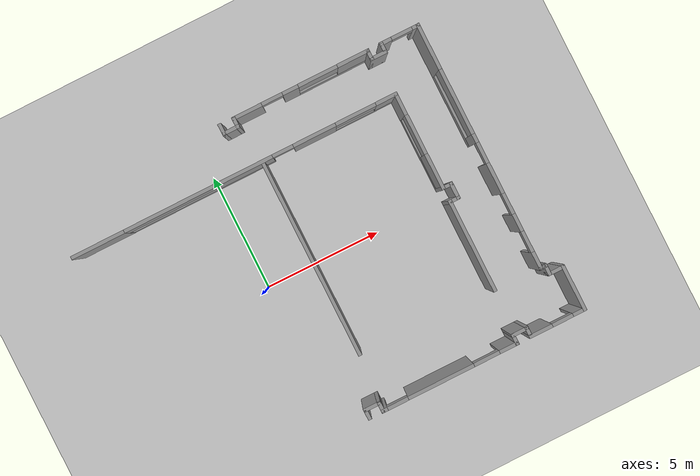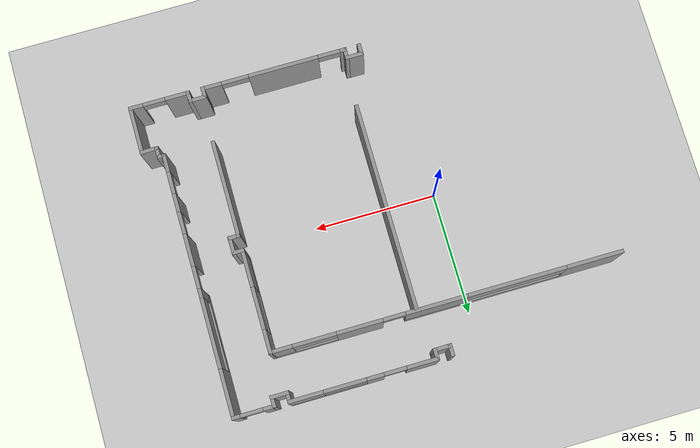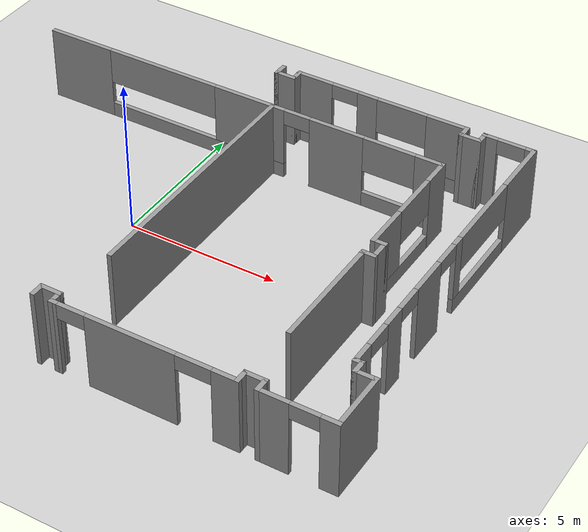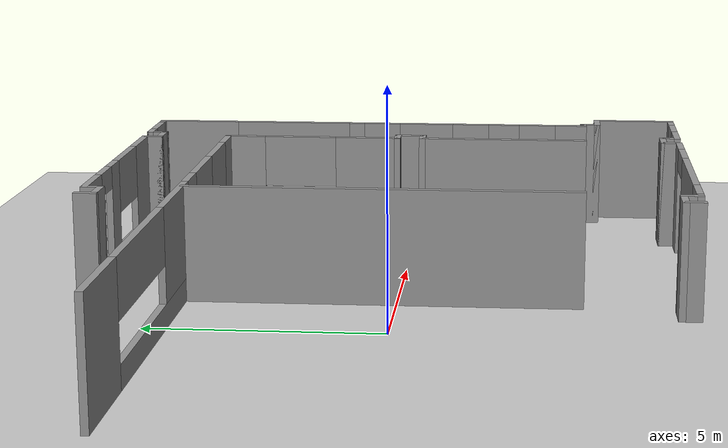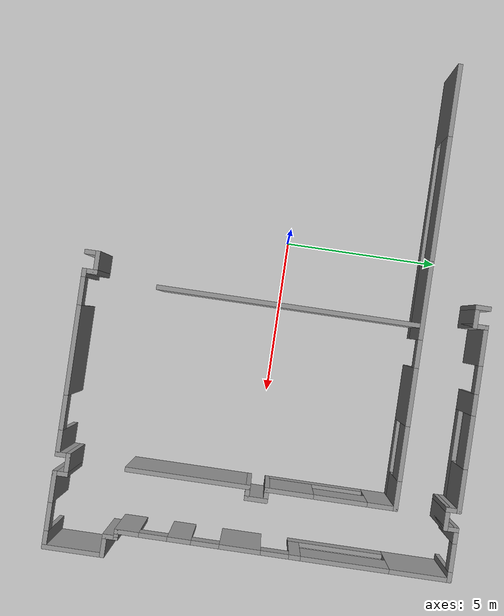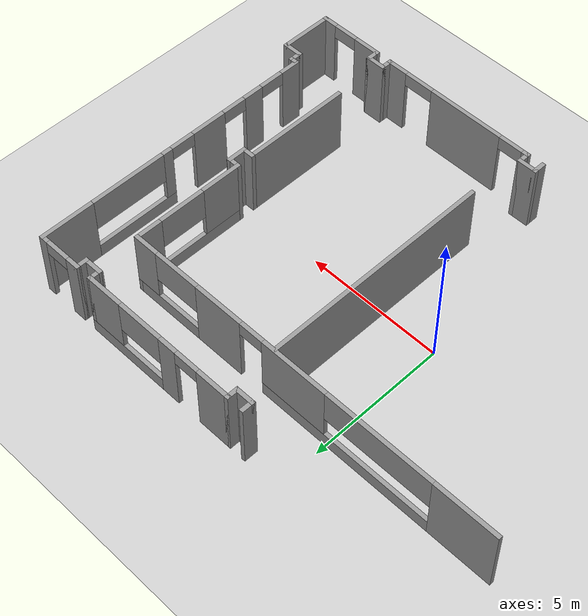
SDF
<sdf version="1.7">
 <world name="default">
  <model name="ground_plane">
   <static>1</static>
   <link name="link">
    <collision name="collision">
     <geometry><plane><normal>0 0 1</normal><size>100 100</size></plane></geometry>
     <surface>
      <contact><collide_bitmask>65535</collide_bitmask></contact>
      <friction><ode><mu>100</mu><mu2>50</mu2></ode></friction>
     </surface>
    </collision>
    <visual name="visual">
     <cast_shadows>0</cast_shadows>
     <geometry><plane><normal>0 0 1</normal><size>100 100</size></plane></geometry>
     <material>
      <script><uri>file://media/materials/scripts/gazebo.material</uri><name>Gazebo/Grey</name></script>
     </material>
    </visual>
   </link>
  </model>
  <model name="Meam">
   <pose>-0.181927 -1.20412 0 0 -0 0</pose>
   <link name="Wall_10">
    <collision name="Wall_10_Collision">
     <geometry><box><size>0.75 0.15 2.5</size></box></geometry>
     <pose>0 0 1.25 0 -0 0</pose>
    </collision>
    <visual name="Wall_10_Visual">
     <pose>0 0 1.25 0 -0 0</pose>
     <geometry><box><size>0.75 0.15 2.5</size></box></geometry>
     <material>
      <script><uri>file://media/materials/scripts/gazebo.material</uri><name>Gazebo/Grey</name></script>
      <ambient>1 1 1 1</ambient>
     </material>
     <meta><layer>0</layer></meta>
    </visual>
    <pose>8.51312 1.35218 0 0 -0 -1.5708</pose>
   </link>
   <link name="Wall_13">
    <collision name="Wall_13_Collision">
     <geometry><box><size>0.5 0.15 2.5</size></box></geometry>
     <pose>0 0 1.25 0 -0 0</pose>
    </collision>
    <visual name="Wall_13_Visual">
     <pose>0 0 1.25 0 -0 0</pose>
     <geometry><box><size>0.5 0.15 2.5</size></box></geometry>
     <material>
      <script><uri>file://media/materials/scripts/gazebo.material</uri><name>Gazebo/Grey</name></script>
      <ambient>1 1 1 1</ambient>
     </material>
     <meta><layer>0</layer></meta>
    </visual>
    <pose>8.33812 1.05218 0 0 -0 3.14159</pose>
   </link>
   <link name="Wall_15">
    <collision name="Wall_15_Collision">
     <geometry><box><size>4 0.15 2.5</size></box></geometry>
     <pose>0 0 1.25 0 -0 0</pose>
    </collision>
    <visual name="Wall_15_Visual">
     <pose>0 0 1.25 0 -0 0</pose>
     <geometry><box><size>4 0.15 2.5</size></box></geometry>
     <material>
      <script><uri>file://media/materials/scripts/gazebo.material</uri><name>Gazebo/Grey</name></script>
      <ambient>1 1 1 1</ambient>
     </material>
     <meta><layer>0</layer></meta>
    </visual>
    <pose>8.16313 -0.872824 0 0 -0 -1.5708</pose>
   </link>
   <link name="Wall_32">
    <collision name="Wall_32_Collision">
     <geometry><box><size>0.5 0.15 2.5</size></box></geometry>
     <pose>0 0 1.25 0 -0 0</pose>
    </collision>
    <visual name="Wall_32_Visual">
     <pose>0 0 1.25 0 -0 0</pose>
     <geometry><box><size>0.5 0.15 2.5</size></box></geometry>
     <material>
      <script><uri>file://media/materials/scripts/gazebo.material</uri><name>Gazebo/Grey</name></script>
      <ambient>1 1 1 1</ambient>
     </material>
     <meta><layer>0</layer></meta>
    </visual>
    <pose>1.50008 7.575 0 0 -0 -1.5708</pose>
   </link>
   <link name="Wall_33">
    <collision name="Wall_33_Collision">
     <geometry><box><size>0.75 0.15 2.5</size></box></geometry>
     <pose>0 0 1.25 0 -0 0</pose>
    </collision>
    <visual name="Wall_33_Visual">
     <pose>0 0 1.25 0 -0 0</pose>
     <geometry><box><size>0.75 0.15 2.5</size></box></geometry>
     <material>
      <script><uri>file://media/materials/scripts/gazebo.material</uri><name>Gazebo/Grey</name></script>
      <ambient>1 1 1 1</ambient>
     </material>
     <meta><layer>0</layer></meta>
    </visual>
    <pose>1.80008 7.4 0 0 -0 0</pose>
   </link>
   <link name="Wall_34">
    <collision name="Wall_34_Collision">
     <geometry><box><size>0.5 0.15 2.5</size></box></geometry>
     <pose>0 0 1.25 0 -0 0</pose>
    </collision>
    <visual name="Wall_34_Visual">
     <pose>0 0 1.25 0 -0 0</pose>
     <geometry><box><size>0.5 0.15 2.5</size></box></geometry>
     <material>
      <script><uri>file://media/materials/scripts/gazebo.material</uri><name>Gazebo/Grey</name></script>
      <ambient>1 1 1 1</ambient>
     </material>
     <meta><layer>0</layer></meta>
    </visual>
    <pose>2.10008 7.575 0 0 -0 1.5708</pose>
   </link>
   <link name="Wall_35">
    <pose>5.02508 7.75 0 0 -0 0</pose>
    <visual name="Wall_35_Visual_0">
     <pose>-2.35198 0 1.25 0 -0 0</pose>
     <geometry><box><size>1.29603 0.15 2.5</size></box></geometry>
     <material>
      <script><uri>file://media/materials/scripts/gazebo.material</uri><name>Gazebo/Grey</name></script>
      <ambient>1 1 1 1</ambient>
     </material>
     <meta><layer>0</layer></meta>
    </visual>
    <collision name="Wall_35_Collision_0">
     <geometry><box><size>1.29603 0.15 2.5</size></box></geometry>
     <pose>-2.35198 0 1.25 0 -0 0</pose>
    </collision>
    <visual name="Wall_35_Visual_1">
     <pose>-0.459673 0 1.25 0 -0 0</pose>
     <geometry><box><size>0.688588 0.15 2.5</size></box></geometry>
     <material>
      <script><uri>file://media/materials/scripts/gazebo.material</uri><name>Gazebo/Grey</name></script>
      <ambient>1 1 1 1</ambient>
     </material>
     <meta><layer>0</layer></meta>
    </visual>
    <collision name="Wall_35_Collision_1">
     <geometry><box><size>0.688588 0.15 2.5</size></box></geometry>
     <pose>-0.459673 0 1.25 0 -0 0</pose>
    </collision>
    <visual name="Wall_35_Visual_2">
     <pose>1.44231 0 0.25 0 -0 0</pose>
     <geometry><box><size>3.11538 0.15 0.5</size></box></geometry>
     <material>
      <script><uri>file://media/materials/scripts/gazebo.material</uri><name>Gazebo/Grey</name></script>
      <ambient>1 1 1 1</ambient>
     </material>
     <meta><layer>0</layer></meta>
    </visual>
    <collision name="Wall_35_Collision_2">
     <geometry><box><size>3.11538 0.15 0.5</size></box></geometry>
     <pose>1.44231 0 0.25 0 -0 0</pose>
    </collision>
    <visual name="Wall_35_Visual_3">
     <pose>2.296 0 1.5 0 -0 0</pose>
     <geometry><box><size>1.40801 0.15 2</size></box></geometry>
     <material>
      <script><uri>file://media/materials/scripts/gazebo.material</uri><name>Gazebo/Grey</name></script>
      <ambient>1 1 1 1</ambient>
     </material>
     <meta><layer>0</layer></meta>
    </visual>
    <collision name="Wall_35_Collision_3">
     <geometry><box><size>1.40801 0.15 2</size></box></geometry>
     <pose>2.296 0 1.5 0 -0 0</pose>
    </collision>
    <visual name="Wall_35_Visual_4">
     <pose>0.738307 0 1.9 0 -0 0</pose>
     <geometry><box><size>1.70737 0.15 1.2</size></box></geometry>
     <material>
      <script><uri>file://media/materials/scripts/gazebo.material</uri><name>Gazebo/Grey</name></script>
      <ambient>1 1 1 1</ambient>
     </material>
     <meta><layer>0</layer></meta>
    </visual>
    <collision name="Wall_35_Collision_4">
     <geometry><box><size>1.70737 0.15 1.2</size></box></geometry>
     <pose>0.738307 0 1.9 0 -0 0</pose>
    </collision>
    <visual name="Wall_35_Visual_5">
     <pose>-1.25397 0 2.25 0 -0 0</pose>
     <geometry><box><size>0.9 0.15 0.5</size></box></geometry>
     <material>
      <script><uri>file://media/materials/scripts/gazebo.material</uri><name>Gazebo/Grey</name></script>
      <ambient>1 1 1 1</ambient>
     </material>
     <meta><layer>0</layer></meta>
    </visual>
    <collision name="Wall_35_Collision_5">
     <geometry><box><size>0.9 0.15 0.5</size></box></geometry>
     <pose>-1.25397 0 2.25 0 -0 0</pose>
    </collision>
   </link>
   <link name="Wall_36">
    <collision name="Wall_36_Collision">
     <geometry><box><size>0.5 0.15 2.5</size></box></geometry>
     <pose>0 0 1.25 0 -0 0</pose>
    </collision>
    <visual name="Wall_36_Visual">
     <pose>0 0 1.25 0 -0 0</pose>
     <geometry><box><size>0.5 0.15 2.5</size></box></geometry>
     <material>
      <script><uri>file://media/materials/scripts/gazebo.material</uri><name>Gazebo/Grey</name></script>
      <ambient>1 1 1 1</ambient>
     </material>
     <meta><layer>0</layer></meta>
    </visual>
    <pose>7.95008 7.575 0 0 -0 -1.5708</pose>
   </link>
   <link name="Wall_37">
    <collision name="Wall_37_Collision">
     <geometry><box><size>0.75 0.15 2.5</size></box></geometry>
     <pose>0 0 1.25 0 -0 0</pose>
    </collision>
    <visual name="Wall_37_Visual">
     <pose>0 0 1.25 0 -0 0</pose>
     <geometry><box><size>0.75 0.15 2.5</size></box></geometry>
     <material>
      <script><uri>file://media/materials/scripts/gazebo.material</uri><name>Gazebo/Grey</name></script>
      <ambient>1 1 1 1</ambient>
     </material>
     <meta><layer>0</layer></meta>
    </visual>
    <pose>8.25008 7.4 0 0 -0 0</pose>
   </link>
   <link name="Wall_38">
    <collision name="Wall_38_Collision">
     <geometry><box><size>0.5 0.15 2.5</size></box></geometry>
     <pose>0 0 1.25 0 -0 0</pose>
    </collision>
    <visual name="Wall_38_Visual">
     <pose>0 0 1.25 0 -0 0</pose>
     <geometry><box><size>0.5 0.15 2.5</size></box></geometry>
     <material>
      <script><uri>file://media/materials/scripts/gazebo.material</uri><name>Gazebo/Grey</name></script>
      <ambient>1 1 1 1</ambient>
     </material>
     <meta><layer>0</layer></meta>
    </visual>
    <pose>8.55008 7.575 0 0 -0 1.5708</pose>
   </link>
   <link name="Wall_39">
    <pose>9.35008 7.75 0 0 -0 0</pose>
    <visual name="Wall_39_Visual_0">
     <pose>-0.618089 0 1.25 0 -0 0</pose>
     <geometry><box><size>0.513822 0.15 2.5</size></box></geometry>
     <material>
      <script><uri>file://media/materials/scripts/gazebo.material</uri><name>Gazebo/Grey</name></script>
      <ambient>1 1 1 1</ambient>
     </material>
     <meta><layer>0</layer></meta>
    </visual>
    <collision name="Wall_39_Collision_0">
     <geometry><box><size>0.513822 0.15 2.5</size></box></geometry>
     <pose>-0.618089 0 1.25 0 -0 0</pose>
    </collision>
    <visual name="Wall_39_Visual_1">
     <pose>0.706911 0 1.25 0 -0 0</pose>
     <geometry><box><size>0.336178 0.15 2.5</size></box></geometry>
     <material>
      <script><uri>file://media/materials/scripts/gazebo.material</uri><name>Gazebo/Grey</name></script>
      <ambient>1 1 1 1</ambient>
     </material>
     <meta><layer>0</layer></meta>
    </visual>
    <collision name="Wall_39_Collision_1">
     <geometry><box><size>0.336178 0.15 2.5</size></box></geometry>
     <pose>0.706911 0 1.25 0 -0 0</pose>
    </collision>
    <visual name="Wall_39_Visual_2">
     <pose>0.088822 0 2.25 0 -0 0</pose>
     <geometry><box><size>0.9 0.15 0.5</size></box></geometry>
     <material>
      <script><uri>file://media/materials/scripts/gazebo.material</uri><name>Gazebo/Grey</name></script>
      <ambient>1 1 1 1</ambient>
     </material>
     <meta><layer>0</layer></meta>
    </visual>
    <collision name="Wall_39_Collision_2">
     <geometry><box><size>0.9 0.15 0.5</size></box></geometry>
     <pose>0.088822 0 2.25 0 -0 0</pose>
    </collision>
   </link>
   <link name="Wall_41">
    <pose>10.1501 2.45 0 0 -0 -1.5708</pose>
    <visual name="Wall_41_Visual_0">
     <pose>-4.37739 0 1.25 0 -0 0</pose>
     <geometry><box><size>1.99521 0.15 2.5</size></box></geometry>
     <material>
      <script><uri>file://media/materials/scripts/gazebo.material</uri><name>Gazebo/Grey</name></script>
      <ambient>1 1 1 1</ambient>
     </material>
     <meta><layer>0</layer></meta>
    </visual>
    <collision name="Wall_41_Collision_0">
     <geometry><box><size>1.99521 0.15 2.5</size></box></geometry>
     <pose>-4.37739 0 1.25 0 -0 0</pose>
    </collision>
    <visual name="Wall_41_Visual_1">
     <pose>1.37954 0 1.25 0 -0 0</pose>
     <geometry><box><size>1.32241 0.15 2.5</size></box></geometry>
     <material>
      <script><uri>file://media/materials/scripts/gazebo.material</uri><name>Gazebo/Grey</name></script>
      <ambient>1 1 1 1</ambient>
     </material>
     <meta><layer>0</layer></meta>
    </visual>
    <collision name="Wall_41_Collision_1">
     <geometry><box><size>1.32241 0.15 2.5</size></box></geometry>
     <pose>1.37954 0 1.25 0 -0 0</pose>
    </collision>
    <visual name="Wall_41_Visual_2">
     <pose>3.31922 0 1.25 0 -0 0</pose>
     <geometry><box><size>0.756941 0.15 2.5</size></box></geometry>
     <material>
      <script><uri>file://media/materials/scripts/gazebo.material</uri><name>Gazebo/Grey</name></script>
      <ambient>1 1 1 1</ambient>
     </material>
     <meta><layer>0</layer></meta>
    </visual>
    <collision name="Wall_41_Collision_2">
     <geometry><box><size>0.756941 0.15 2.5</size></box></geometry>
     <pose>3.31922 0 1.25 0 -0 0</pose>
    </collision>
    <visual name="Wall_41_Visual_3">
     <pose>4.98634 0 1.25 0 -0 0</pose>
     <geometry><box><size>0.777313 0.15 2.5</size></box></geometry>
     <material>
      <script><uri>file://media/materials/scripts/gazebo.material</uri><name>Gazebo/Grey</name></script>
      <ambient>1 1 1 1</ambient>
     </material>
     <meta><layer>0</layer></meta>
    </visual>
    <collision name="Wall_41_Collision_3">
     <geometry><box><size>0.777313 0.15 2.5</size></box></geometry>
     <pose>4.98634 0 1.25 0 -0 0</pose>
    </collision>
    <visual name="Wall_41_Visual_4">
     <pose>-1.78072 0 0.25 0 -0 0</pose>
     <geometry><box><size>3.19813 0.15 0.5</size></box></geometry>
     <material>
      <script><uri>file://media/materials/scripts/gazebo.material</uri><name>Gazebo/Grey</name></script>
      <ambient>1 1 1 1</ambient>
     </material>
     <meta><layer>0</layer></meta>
    </visual>
    <collision name="Wall_41_Collision_4">
     <geometry><box><size>3.19813 0.15 0.5</size></box></geometry>
     <pose>-1.78072 0 0.25 0 -0 0</pose>
    </collision>
    <visual name="Wall_41_Visual_5">
     <pose>-0.368148 0 1.5 0 -0 0</pose>
     <geometry><box><size>0.37298 0.15 2</size></box></geometry>
     <material>
      <script><uri>file://media/materials/scripts/gazebo.material</uri><name>Gazebo/Grey</name></script>
      <ambient>1 1 1 1</ambient>
     </material>
     <meta><layer>0</layer></meta>
    </visual>
    <collision name="Wall_41_Collision_5">
     <geometry><box><size>0.37298 0.15 2</size></box></geometry>
     <pose>-0.368148 0 1.5 0 -0 0</pose>
    </collision>
    <visual name="Wall_41_Visual_6">
     <pose>-1.96721 0 1.9 0 -0 0</pose>
     <geometry><box><size>2.82515 0.15 1.2</size></box></geometry>
     <material>
      <script><uri>file://media/materials/scripts/gazebo.material</uri><name>Gazebo/Grey</name></script>
      <ambient>1 1 1 1</ambient>
     </material>
     <meta><layer>0</layer></meta>
    </visual>
    <collision name="Wall_41_Collision_6">
     <geometry><box><size>2.82515 0.15 1.2</size></box></geometry>
     <pose>-1.96721 0 1.9 0 -0 0</pose>
    </collision>
    <visual name="Wall_41_Visual_7">
     <pose>2.49075 0 2.25 0 -0 0</pose>
     <geometry><box><size>0.9 0.15 0.5</size></box></geometry>
     <material>
      <script><uri>file://media/materials/scripts/gazebo.material</uri><name>Gazebo/Grey</name></script>
      <ambient>1 1 1 1</ambient>
     </material>
     <meta><layer>0</layer></meta>
    </visual>
    <collision name="Wall_41_Collision_7">
     <geometry><box><size>0.9 0.15 0.5</size></box></geometry>
     <pose>2.49075 0 2.25 0 -0 0</pose>
    </collision>
    <visual name="Wall_41_Visual_8">
     <pose>4.14769 0 2.25 0 -0 0</pose>
     <geometry><box><size>0.9 0.15 0.5</size></box></geometry>
     <material>
      <script><uri>file://media/materials/scripts/gazebo.material</uri><name>Gazebo/Grey</name></script>
      <ambient>1 1 1 1</ambient>
     </material>
     <meta><layer>0</layer></meta>
    </visual>
    <collision name="Wall_41_Collision_8">
     <geometry><box><size>0.9 0.15 0.5</size></box></geometry>
     <pose>4.14769 0 2.25 0 -0 0</pose>
    </collision>
    <visual name="Wall_41_Visual_9">
     <pose>0.268342 0 2.25 0 -0 0</pose>
     <geometry><box><size>0.9 0.15 0.5</size></box></geometry>
     <material>
      <script><uri>file://media/materials/scripts/gazebo.material</uri><name>Gazebo/Grey</name></script>
      <ambient>1 1 1 1</ambient>
     </material>
     <meta><layer>0</layer></meta>
    </visual>
    <collision name="Wall_41_Collision_9">
     <geometry><box><size>0.9 0.15 0.5</size></box></geometry>
     <pose>0.268342 0 2.25 0 -0 0</pose>
    </collision>
   </link>
   <link name="Wall_44">
    <collision name="Wall_44_Collision">
     <geometry><box><size>0.25 0.15 2.5</size></box></geometry>
     <pose>0 0 1.25 0 -0 0</pose>
    </collision>
    <visual name="Wall_44_Visual">
     <pose>0 0 1.25 0 -0 0</pose>
     <geometry><box><size>0.25 0.15 2.5</size></box></geometry>
     <material>
      <script><uri>file://media/materials/scripts/gazebo.material</uri><name>Gazebo/Grey</name></script>
      <ambient>1 1 1 1</ambient>
     </material>
     <meta><layer>0</layer></meta>
    </visual>
    <pose>10.2001 -2.85 0 0 -0 0</pose>
   </link>
   <link name="Wall_45">
    <collision name="Wall_45_Collision">
     <geometry><box><size>0.25 0.15 2.5</size></box></geometry>
     <pose>0 0 1.25 0 -0 0</pose>
    </collision>
    <visual name="Wall_45_Visual">
     <pose>0 0 1.25 0 -0 0</pose>
     <geometry><box><size>0.25 0.15 2.5</size></box></geometry>
     <material>
      <script><uri>file://media/materials/scripts/gazebo.material</uri><name>Gazebo/Grey</name></script>
      <ambient>1 1 1 1</ambient>
     </material>
     <meta><layer>0</layer></meta>
    </visual>
    <pose>10.3001 -2.85 0 0 -0 0</pose>
   </link>
   <link name="Wall_46">
    <collision name="Wall_46_Collision">
     <geometry><box><size>0.5 0.15 2.5</size></box></geometry>
     <pose>0 0 1.25 0 -0 0</pose>
    </collision>
    <visual name="Wall_46_Visual">
     <pose>0 0 1.25 0 -0 0</pose>
     <geometry><box><size>0.5 0.15 2.5</size></box></geometry>
     <material>
      <script><uri>file://media/materials/scripts/gazebo.material</uri><name>Gazebo/Grey</name></script>
      <ambient>1 1 1 1</ambient>
     </material>
     <meta><layer>0</layer></meta>
    </visual>
    <pose>10.3501 -3.025 0 0 -0 -1.5708</pose>
   </link>
   <link name="Wall_47">
    <collision name="Wall_47_Collision">
     <geometry><box><size>0.75 0.15 2.5</size></box></geometry>
     <pose>0 0 1.25 0 -0 0</pose>
    </collision>
    <visual name="Wall_47_Visual">
     <pose>0 0 1.25 0 -0 0</pose>
     <geometry><box><size>0.75 0.15 2.5</size></box></geometry>
     <material>
      <script><uri>file://media/materials/scripts/gazebo.material</uri><name>Gazebo/Grey</name></script>
      <ambient>1 1 1 1</ambient>
     </material>
     <meta><layer>0</layer></meta>
    </visual>
    <pose>10.6501 -3.2 0 0 -0 0</pose>
   </link>
   <link name="Wall_49">
    <collision name="Wall_49_Collision">
     <geometry><box><size>2 0.15 2.5</size></box></geometry>
     <pose>0 0 1.25 0 -0 0</pose>
    </collision>
    <visual name="Wall_49_Visual">
     <pose>0 0 1.25 0 -0 0</pose>
     <geometry><box><size>2 0.15 2.5</size></box></geometry>
     <material>
      <script><uri>file://media/materials/scripts/gazebo.material</uri><name>Gazebo/Grey</name></script>
      <ambient>1 1 1 1</ambient>
     </material>
     <meta><layer>0</layer></meta>
    </visual>
    <pose>10.9501 -4.125 0 0 -0 -1.5708</pose>
   </link>
   <link name="Wall_5">
    <pose>1.11312 5.75218 0 0 -0 0</pose>
    <visual name="Wall_5_Visual_0">
     <pose>-5.96899 0 1.25 0 -0 0</pose>
     <geometry><box><size>2.31203 0.15 2.5</size></box></geometry>
     <material>
      <script><uri>file://media/materials/scripts/gazebo.material</uri><name>Gazebo/Grey</name></script>
      <ambient>1 1 1 1</ambient>
     </material>
     <meta><layer>0</layer></meta>
    </visual>
    <collision name="Wall_5_Collision_0">
     <geometry><box><size>2.31203 0.15 2.5</size></box></geometry>
     <pose>-5.96899 0 1.25 0 -0 0</pose>
    </collision>
    <visual name="Wall_5_Visual_1">
     <pose>3.49831 0 1.25 0 -0 0</pose>
     <geometry><box><size>1.85897 0.15 2.5</size></box></geometry>
     <material>
      <script><uri>file://media/materials/scripts/gazebo.material</uri><name>Gazebo/Grey</name></script>
      <ambient>1 1 1 1</ambient>
     </material>
     <meta><layer>0</layer></meta>
    </visual>
    <collision name="Wall_5_Collision_1">
     <geometry><box><size>1.85897 0.15 2.5</size></box></geometry>
     <pose>3.49831 0 1.25 0 -0 0</pose>
    </collision>
    <visual name="Wall_5_Visual_2">
     <pose>-1.57207 0 0.25 0 -0 0</pose>
     <geometry><box><size>6.4818 0.15 0.5</size></box></geometry>
     <material>
      <script><uri>file://media/materials/scripts/gazebo.material</uri><name>Gazebo/Grey</name></script>
      <ambient>1 1 1 1</ambient>
     </material>
     <meta><layer>0</layer></meta>
    </visual>
    <collision name="Wall_5_Collision_2">
     <geometry><box><size>6.4818 0.15 0.5</size></box></geometry>
     <pose>-1.57207 0 0.25 0 -0 0</pose>
    </collision>
    <visual name="Wall_5_Visual_3">
     <pose>5.7764 0 0.25 0 -0 0</pose>
     <geometry><box><size>2.69721 0.15 0.5</size></box></geometry>
     <material>
      <script><uri>file://media/materials/scripts/gazebo.material</uri><name>Gazebo/Grey</name></script>
      <ambient>1 1 1 1</ambient>
     </material>
     <meta><layer>0</layer></meta>
    </visual>
    <collision name="Wall_5_Collision_3">
     <geometry><box><size>2.69721 0.15 0.5</size></box></geometry>
     <pose>5.7764 0 0.25 0 -0 0</pose>
    </collision>
    <visual name="Wall_5_Visual_4">
     <pose>0.414926 0 1.5 0 -0 0</pose>
     <geometry><box><size>2.5078 0.15 2</size></box></geometry>
     <material>
      <script><uri>file://media/materials/scripts/gazebo.material</uri><name>Gazebo/Grey</name></script>
      <ambient>1 1 1 1</ambient>
     </material>
     <meta><layer>0</layer></meta>
    </visual>
    <collision name="Wall_5_Collision_4">
     <geometry><box><size>2.5078 0.15 2</size></box></geometry>
     <pose>0.414926 0 1.5 0 -0 0</pose>
    </collision>
    <visual name="Wall_5_Visual_5">
     <pose>0.414926 0 1.5 0 -0 0</pose>
     <geometry><box><size>2.5078 0.15 2</size></box></geometry>
     <material>
      <script><uri>file://media/materials/scripts/gazebo.material</uri><name>Gazebo/Grey</name></script>
      <ambient>1 1 1 1</ambient>
     </material>
     <meta><layer>0</layer></meta>
    </visual>
    <collision name="Wall_5_Collision_5">
     <geometry><box><size>2.5078 0.15 2</size></box></geometry>
     <pose>0.414926 0 1.5 0 -0 0</pose>
    </collision>
    <visual name="Wall_5_Visual_6">
     <pose>6.64981 0 1.5 0 -0 0</pose>
     <geometry><box><size>0.950384 0.15 2</size></box></geometry>
     <material>
      <script><uri>file://media/materials/scripts/gazebo.material</uri><name>Gazebo/Grey</name></script>
      <ambient>1 1 1 1</ambient>
     </material>
     <meta><layer>0</layer></meta>
    </visual>
    <collision name="Wall_5_Collision_6">
     <geometry><box><size>0.950384 0.15 2</size></box></geometry>
     <pose>6.64981 0 1.5 0 -0 0</pose>
    </collision>
    <visual name="Wall_5_Visual_7">
     <pose>-2.82597 0 1.9 0 -0 0</pose>
     <geometry><box><size>3.974 0.15 1.2</size></box></geometry>
     <material>
      <script><uri>file://media/materials/scripts/gazebo.material</uri><name>Gazebo/Grey</name></script>
      <ambient>1 1 1 1</ambient>
     </material>
     <meta><layer>0</layer></meta>
    </visual>
    <collision name="Wall_5_Collision_7">
     <geometry><box><size>3.974 0.15 1.2</size></box></geometry>
     <pose>-2.82597 0 1.9 0 -0 0</pose>
    </collision>
    <visual name="Wall_5_Visual_8">
     <pose>5.3012 0 1.9 0 -0 0</pose>
     <geometry><box><size>1.74682 0.15 1.2</size></box></geometry>
     <material>
      <script><uri>file://media/materials/scripts/gazebo.material</uri><name>Gazebo/Grey</name></script>
      <ambient>1 1 1 1</ambient>
     </material>
     <meta><layer>0</layer></meta>
    </visual>
    <collision name="Wall_5_Collision_8">
     <geometry><box><size>1.74682 0.15 1.2</size></box></geometry>
     <pose>5.3012 0 1.9 0 -0 0</pose>
    </collision>
    <visual name="Wall_5_Visual_9">
     <pose>2.11883 0 2.25 0 -0 0</pose>
     <geometry><box><size>0.9 0.15 0.5</size></box></geometry>
     <material>
      <script><uri>file://media/materials/scripts/gazebo.material</uri><name>Gazebo/Grey</name></script>
      <ambient>1 1 1 1</ambient>
     </material>
     <meta><layer>0</layer></meta>
    </visual>
    <collision name="Wall_5_Collision_9">
     <geometry><box><size>0.9 0.15 0.5</size></box></geometry>
     <pose>2.11883 0 2.25 0 -0 0</pose>
    </collision>
    <visual name="Wall_5_Visual_10">
     <pose>2.11883 0 2.25 0 -0 0</pose>
     <geometry><box><size>0.9 0.15 0.5</size></box></geometry>
     <material>
      <script><uri>file://media/materials/scripts/gazebo.material</uri><name>Gazebo/Grey</name></script>
      <ambient>1 1 1 1</ambient>
     </material>
     <meta><layer>0</layer></meta>
    </visual>
    <collision name="Wall_5_Collision_10">
     <geometry><box><size>0.9 0.15 0.5</size></box></geometry>
     <pose>2.11883 0 2.25 0 -0 0</pose>
    </collision>
   </link>
   <link name="Wall_50">
    <pose>9.77508 -5.05 0 0 -0 3.14159</pose>
    <visual name="Wall_50_Visual_0">
     <pose>-0.958068 0 1.25 0 -0 0</pose>
     <geometry><box><size>0.583863 0.15 2.5</size></box></geometry>
     <material>
      <script><uri>file://media/materials/scripts/gazebo.material</uri><name>Gazebo/Grey</name></script>
      <ambient>1 1 1 1</ambient>
     </material>
     <meta><layer>0</layer></meta>
    </visual>
    <collision name="Wall_50_Collision_0">
     <geometry><box><size>0.583863 0.15 2.5</size></box></geometry>
     <pose>-0.958068 0 1.25 0 -0 0</pose>
    </collision>
    <visual name="Wall_50_Visual_1">
     <pose>0.741932 0 1.25 0 -0 0</pose>
     <geometry><box><size>1.01614 0.15 2.5</size></box></geometry>
     <material>
      <script><uri>file://media/materials/scripts/gazebo.material</uri><name>Gazebo/Grey</name></script>
      <ambient>1 1 1 1</ambient>
     </material>
     <meta><layer>0</layer></meta>
    </visual>
    <collision name="Wall_50_Collision_1">
     <geometry><box><size>1.01614 0.15 2.5</size></box></geometry>
     <pose>0.741932 0 1.25 0 -0 0</pose>
    </collision>
    <visual name="Wall_50_Visual_2">
     <pose>-0.216137 0 2.25 0 -0 0</pose>
     <geometry><box><size>0.9 0.15 0.5</size></box></geometry>
     <material>
      <script><uri>file://media/materials/scripts/gazebo.material</uri><name>Gazebo/Grey</name></script>
      <ambient>1 1 1 1</ambient>
     </material>
     <meta><layer>0</layer></meta>
    </visual>
    <collision name="Wall_50_Collision_2">
     <geometry><box><size>0.9 0.15 0.5</size></box></geometry>
     <pose>-0.216137 0 2.25 0 -0 0</pose>
    </collision>
   </link>
   <link name="Wall_51">
    <collision name="Wall_51_Collision">
     <geometry><box><size>0.5 0.15 2.5</size></box></geometry>
     <pose>0 0 1.25 0 -0 0</pose>
    </collision>
    <visual name="Wall_51_Visual">
     <pose>0 0 1.25 0 -0 0</pose>
     <geometry><box><size>0.5 0.15 2.5</size></box></geometry>
     <material>
      <script><uri>file://media/materials/scripts/gazebo.material</uri><name>Gazebo/Grey</name></script>
      <ambient>1 1 1 1</ambient>
     </material>
     <meta><layer>0</layer></meta>
    </visual>
    <pose>8.60008 -4.875 0 0 -0 1.5708</pose>
   </link>
   <link name="Wall_52">
    <collision name="Wall_52_Collision">
     <geometry><box><size>0.75 0.15 2.5</size></box></geometry>
     <pose>0 0 1.25 0 -0 0</pose>
    </collision>
    <visual name="Wall_52_Visual">
     <pose>0 0 1.25 0 -0 0</pose>
     <geometry><box><size>0.75 0.15 2.5</size></box></geometry>
     <material>
      <script><uri>file://media/materials/scripts/gazebo.material</uri><name>Gazebo/Grey</name></script>
      <ambient>1 1 1 1</ambient>
     </material>
     <meta><layer>0</layer></meta>
    </visual>
    <pose>8.30008 -4.7 0 0 -0 3.14159</pose>
   </link>
   <link name="Wall_53">
    <collision name="Wall_53_Collision">
     <geometry><box><size>0.5 0.15 2.5</size></box></geometry>
     <pose>0 0 1.25 0 -0 0</pose>
    </collision>
    <visual name="Wall_53_Visual">
     <pose>0 0 1.25 0 -0 0</pose>
     <geometry><box><size>0.5 0.15 2.5</size></box></geometry>
     <material>
      <script><uri>file://media/materials/scripts/gazebo.material</uri><name>Gazebo/Grey</name></script>
      <ambient>1 1 1 1</ambient>
     </material>
     <meta><layer>0</layer></meta>
    </visual>
    <pose>8.00008 -4.875 0 0 -0 -1.5708</pose>
   </link>
   <link name="Wall_54">
    <pose>5.07508 -5.05 0 0 -0 3.14159</pose>
    <visual name="Wall_54_Visual_0">
     <pose>-2.57873 0 1.25 0 -0 0</pose>
     <geometry><box><size>0.842543 0.15 2.5</size></box></geometry>
     <material>
      <script><uri>file://media/materials/scripts/gazebo.material</uri><name>Gazebo/Grey</name></script>
      <ambient>1 1 1 1</ambient>
     </material>
     <meta><layer>0</layer></meta>
    </visual>
    <collision name="Wall_54_Collision_0">
     <geometry><box><size>0.842543 0.15 2.5</size></box></geometry>
     <pose>-2.57873 0 1.25 0 -0 0</pose>
    </collision>
    <visual name="Wall_54_Visual_1">
     <pose>0.39002 0 1.25 0 -0 0</pose>
     <geometry><box><size>2.87414 0.15 2.5</size></box></geometry>
     <material>
      <script><uri>file://media/materials/scripts/gazebo.material</uri><name>Gazebo/Grey</name></script>
      <ambient>1 1 1 1</ambient>
     </material>
     <meta><layer>0</layer></meta>
    </visual>
    <collision name="Wall_54_Collision_1">
     <geometry><box><size>2.87414 0.15 2.5</size></box></geometry>
     <pose>0.39002 0 1.25 0 -0 0</pose>
    </collision>
    <visual name="Wall_54_Visual_2">
     <pose>2.86355 0 1.25 0 -0 0</pose>
     <geometry><box><size>0.272908 0.15 2.5</size></box></geometry>
     <material>
      <script><uri>file://media/materials/scripts/gazebo.material</uri><name>Gazebo/Grey</name></script>
      <ambient>1 1 1 1</ambient>
     </material>
     <meta><layer>0</layer></meta>
    </visual>
    <collision name="Wall_54_Collision_2">
     <geometry><box><size>0.272908 0.15 2.5</size></box></geometry>
     <pose>2.86355 0 1.25 0 -0 0</pose>
    </collision>
    <visual name="Wall_54_Visual_3">
     <pose>-1.60225 0 2.25 0 -0 0</pose>
     <geometry><box><size>1.11041 0.15 0.5</size></box></geometry>
     <material>
      <script><uri>file://media/materials/scripts/gazebo.material</uri><name>Gazebo/Grey</name></script>
      <ambient>1 1 1 1</ambient>
     </material>
     <meta><layer>0</layer></meta>
    </visual>
    <collision name="Wall_54_Collision_3">
     <geometry><box><size>1.11041 0.15 0.5</size></box></geometry>
     <pose>-1.60225 0 2.25 0 -0 0</pose>
    </collision>
    <visual name="Wall_54_Visual_4">
     <pose>2.27709 0 2.25 0 -0 0</pose>
     <geometry><box><size>0.9 0.15 0.5</size></box></geometry>
     <material>
      <script><uri>file://media/materials/scripts/gazebo.material</uri><name>Gazebo/Grey</name></script>
      <ambient>1 1 1 1</ambient>
     </material>
     <meta><layer>0</layer></meta>
    </visual>
    <collision name="Wall_54_Collision_4">
     <geometry><box><size>0.9 0.15 0.5</size></box></geometry>
     <pose>2.27709 0 2.25 0 -0 0</pose>
    </collision>
   </link>
   <link name="Wall_55">
    <collision name="Wall_55_Collision">
     <geometry><box><size>0.5 0.15 2.5</size></box></geometry>
     <pose>0 0 1.25 0 -0 0</pose>
    </collision>
    <visual name="Wall_55_Visual">
     <pose>0 0 1.25 0 -0 0</pose>
     <geometry><box><size>0.5 0.15 2.5</size></box></geometry>
     <material>
      <script><uri>file://media/materials/scripts/gazebo.material</uri><name>Gazebo/Grey</name></script>
      <ambient>1 1 1 1</ambient>
     </material>
     <meta><layer>0</layer></meta>
    </visual>
    <pose>2.15008 -4.875 0 0 -0 1.5708</pose>
   </link>
   <link name="Wall_57">
    <collision name="Wall_57_Collision">
     <geometry><box><size>0.75 0.15 2.5</size></box></geometry>
     <pose>0 0 1.25 0 -0 0</pose>
    </collision>
    <visual name="Wall_57_Visual">
     <pose>0 0 1.25 0 -0 0</pose>
     <geometry><box><size>0.75 0.15 2.5</size></box></geometry>
     <material>
      <script><uri>file://media/materials/scripts/gazebo.material</uri><name>Gazebo/Grey</name></script>
      <ambient>1 1 1 1</ambient>
     </material>
     <meta><layer>0</layer></meta>
    </visual>
    <pose>1.85008 -4.7 0 0 -0 3.14159</pose>
   </link>
   <link name="Wall_58">
    <collision name="Wall_58_Collision">
     <geometry><box><size>0.5 0.15 2.5</size></box></geometry>
     <pose>0 0 1.25 0 -0 0</pose>
    </collision>
    <visual name="Wall_58_Visual">
     <pose>0 0 1.25 0 -0 0</pose>
     <geometry><box><size>0.5 0.15 2.5</size></box></geometry>
     <material>
      <script><uri>file://media/materials/scripts/gazebo.material</uri><name>Gazebo/Grey</name></script>
      <ambient>1 1 1 1</ambient>
     </material>
     <meta><layer>0</layer></meta>
    </visual>
    <pose>1.55008 -4.875 0 0 -0 -1.5708</pose>
   </link>
   <link name="Wall_6">
    <pose>8.16313 3.70218 0 0 -0 -1.5708</pose>
    <visual name="Wall_6_Visual_0">
     <pose>-1.63317 0 1.25 0 -0 0</pose>
     <geometry><box><size>0.98366 0.15 2.5</size></box></geometry>
     <material>
      <script><uri>file://media/materials/scripts/gazebo.material</uri><name>Gazebo/Grey</name></script>
      <ambient>1 1 1 1</ambient>
     </material>
     <meta><layer>0</layer></meta>
    </visual>
    <collision name="Wall_6_Collision_0">
     <geometry><box><size>0.98366 0.15 2.5</size></box></geometry>
     <pose>-1.63317 0 1.25 0 -0 0</pose>
    </collision>
    <visual name="Wall_6_Visual_1">
     <pose>0.49183 0 0.25 0 -0 0</pose>
     <geometry><box><size>3.26634 0.15 0.5</size></box></geometry>
     <material>
      <script><uri>file://media/materials/scripts/gazebo.material</uri><name>Gazebo/Grey</name></script>
      <ambient>1 1 1 1</ambient>
     </material>
     <meta><layer>0</layer></meta>
    </visual>
    <collision name="Wall_6_Collision_1">
     <geometry><box><size>3.26634 0.15 0.5</size></box></geometry>
     <pose>0.49183 0 0.25 0 -0 0</pose>
    </collision>
    <visual name="Wall_6_Visual_2">
     <pose>1.34552 0 1.5 0 -0 0</pose>
     <geometry><box><size>1.55897 0.15 2</size></box></geometry>
     <material>
      <script><uri>file://media/materials/scripts/gazebo.material</uri><name>Gazebo/Grey</name></script>
      <ambient>1 1 1 1</ambient>
     </material>
     <meta><layer>0</layer></meta>
    </visual>
    <collision name="Wall_6_Collision_2">
     <geometry><box><size>1.55897 0.15 2</size></box></geometry>
     <pose>1.34552 0 1.5 0 -0 0</pose>
    </collision>
    <visual name="Wall_6_Visual_3">
     <pose>-0.287654 0 1.9 0 -0 0</pose>
     <geometry><box><size>1.70737 0.15 1.2</size></box></geometry>
     <material>
      <script><uri>file://media/materials/scripts/gazebo.material</uri><name>Gazebo/Grey</name></script>
      <ambient>1 1 1 1</ambient>
     </material>
     <meta><layer>0</layer></meta>
    </visual>
    <collision name="Wall_6_Collision_3">
     <geometry><box><size>1.70737 0.15 1.2</size></box></geometry>
     <pose>-0.287654 0 1.9 0 -0 0</pose>
    </collision>
   </link>
   <link name="Wall_7">
    <collision name="Wall_7_Collision">
     <geometry><box><size>0.5 0.15 2.5</size></box></geometry>
     <pose>0 0 1.25 0 -0 0</pose>
    </collision>
    <visual name="Wall_7_Visual">
     <pose>0 0 1.25 0 -0 0</pose>
     <geometry><box><size>0.5 0.15 2.5</size></box></geometry>
     <material>
      <script><uri>file://media/materials/scripts/gazebo.material</uri><name>Gazebo/Grey</name></script>
      <ambient>1 1 1 1</ambient>
     </material>
     <meta><layer>0</layer></meta>
    </visual>
    <pose>8.33812 1.65218 0 0 -0 0</pose>
   </link>
   <link name="Wall_97">
    <collision name="Wall_97_Collision">
     <geometry><box><size>8.5 0.15 2.5</size></box></geometry>
     <pose>0 0 1.25 0 -0 0</pose>
    </collision>
    <visual name="Wall_97_Visual">
     <pose>0 0 1.25 0 -0 0</pose>
     <geometry><box><size>8.5 0.15 2.5</size></box></geometry>
     <material>
      <script><uri>file://media/materials/scripts/gazebo.material</uri><name>Gazebo/Grey</name></script>
      <ambient>1 1 1 1</ambient>
     </material>
     <meta><layer>0</layer></meta>
    </visual>
    <pose>2.33515 1.52673 0 0 -0 -1.5708</pose>
   </link>
   <static>1</static>
  </model>
 </world>
</sdf>
